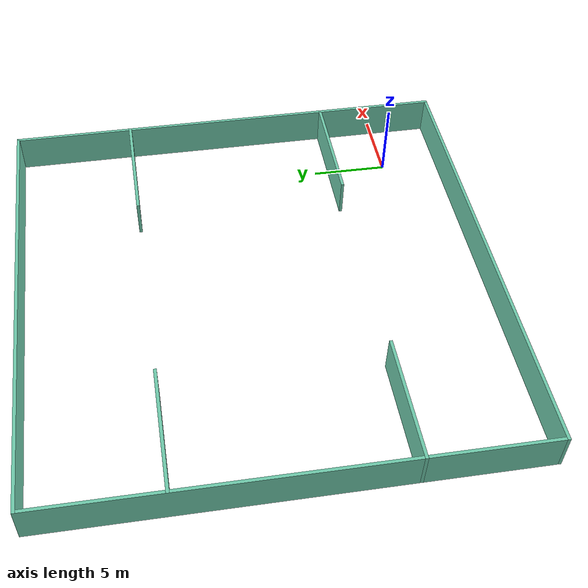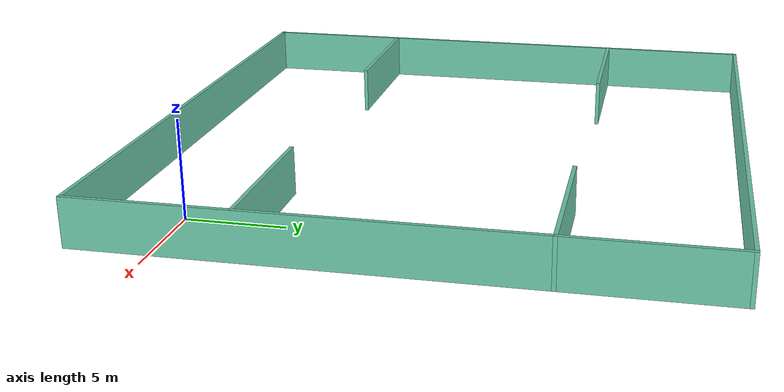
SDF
<?xml version='1.0'?>
<sdf version='1.7'>
  <model name='new_sim_world'>
    <pose>-11 11 0 0 -0 0</pose>
    <link name='Wall_10'>
      <collision name='Wall_10_Collision'>
        <geometry>
          <box>
            <size>8.2 0.2 2.5</size>
          </box>
        </geometry>
        <pose>0 0 1.25 0 -0 0</pose>
      </collision>
      <visual name='Wall_10_Visual'>
        <pose>0 0 1.25 0 -0 0</pose>
        <geometry>
          <box>
            <size>8.2 0.2 2.5</size>
          </box>
        </geometry>
        <material>
          <script>
            <uri>file://media/materials/scripts/gazebo.material</uri>
            <name>Gazebo/Grey</name>
          </script>
          <ambient>0.435294 0.796078 0.67451 1</ambient>
        </material>
        <meta>
          <layer>0</layer>
        </meta>
      </visual>
      <pose>-11 -7 0 0 -0 0</pose>
    </link>
    <link name='Wall_12'>
      <collision name='Wall_12_Collision'>
        <geometry>
          <box>
            <size>8.2 0.2 2.5</size>
          </box>
        </geometry>
        <pose>0 0 1.25 0 -0 0</pose>
      </collision>
      <visual name='Wall_12_Visual'>
        <pose>0 0 1.25 0 -0 0</pose>
        <geometry>
          <box>
            <size>8.2 0.2 2.5</size>
          </box>
        </geometry>
        <material>
          <script>
            <uri>file://media/materials/scripts/gazebo.material</uri>
            <name>Gazebo/Grey</name>
          </script>
          <ambient>0.435294 0.796078 0.67451 1</ambient>
        </material>
        <meta>
          <layer>0</layer>
        </meta>
      </visual>
      <pose>-11 7 0 0 -0 0</pose>
    </link>
    <link name='Wall_14'>
      <collision name='Wall_14_Collision'>
        <geometry>
          <box>
            <size>8.2 0.2 2.5</size>
          </box>
        </geometry>
        <pose>0 0 1.25 0 -0 0</pose>
      </collision>
      <visual name='Wall_14_Visual'>
        <pose>0 0 1.25 0 -0 0</pose>
        <geometry>
          <box>
            <size>8.2 0.2 2.5</size>
          </box>
        </geometry>
        <material>
          <script>
            <uri>file://media/materials/scripts/gazebo.material</uri>
            <name>Gazebo/Grey</name>
          </script>
          <ambient>0.435294 0.796078 0.67451 1</ambient>
        </material>
        <meta>
          <layer>0</layer>
        </meta>
      </visual>
      <pose>11 7 0 0 -0 3.14159</pose>
    </link>
    <link name='Wall_2'>
      <collision name='Wall_2_Collision'>
        <geometry>
          <box>
            <size>30.2 0.2 2.5</size>
          </box>
        </geometry>
        <pose>0 0 1.25 0 -0 0</pose>
      </collision>
      <visual name='Wall_2_Visual'>
        <pose>0 0 1.25 0 -0 0</pose>
        <geometry>
          <box>
            <size>30.2 0.2 2.5</size>
          </box>
        </geometry>
        <material>
          <script>
            <uri>file://media/materials/scripts/gazebo.material</uri>
            <name>Gazebo/Grey</name>
          </script>
          <ambient>0.435294 0.796078 0.67451 1</ambient>
        </material>
        <meta>
          <layer>0</layer>
        </meta>
      </visual>
      <pose>0 -15 0 0 -0 3.14159</pose>
    </link>
    <link name='Wall_3'>
      <collision name='Wall_3_Collision'>
        <geometry>
          <box>
            <size>30.2 0.2 2.5</size>
          </box>
        </geometry>
        <pose>0 0 1.25 0 -0 0</pose>
      </collision>
      <visual name='Wall_3_Visual'>
        <pose>0 0 1.25 0 -0 0</pose>
        <geometry>
          <box>
            <size>30.2 0.2 2.5</size>
          </box>
        </geometry>
        <material>
          <script>
            <uri>file://media/materials/scripts/gazebo.material</uri>
            <name>Gazebo/Grey</name>
          </script>
          <ambient>0.435294 0.796078 0.67451 1</ambient>
        </material>
        <meta>
          <layer>0</layer>
        </meta>
      </visual>
      <pose>-15 0 0 0 -0 1.5708</pose>
    </link>
    <link name='Wall_4'>
      <collision name='Wall_4_Collision'>
        <geometry>
          <box>
            <size>30.2 0.2 2.5</size>
          </box>
        </geometry>
        <pose>0 0 1.25 0 -0 0</pose>
      </collision>
      <visual name='Wall_4_Visual'>
        <pose>0 0 1.25 0 -0 0</pose>
        <geometry>
          <box>
            <size>30.2 0.2 2.5</size>
          </box>
        </geometry>
        <material>
          <script>
            <uri>file://media/materials/scripts/gazebo.material</uri>
            <name>Gazebo/Grey</name>
          </script>
          <ambient>0.435294 0.796078 0.67451 1</ambient>
        </material>
        <meta>
          <layer>0</layer>
        </meta>
      </visual>
      <pose>0 15 0 0 -0 0</pose>
    </link>
    <link name='Wall_6'>
      <collision name='Wall_6_Collision'>
        <geometry>
          <box>
            <size>30.2 0.2 2.5</size>
          </box>
        </geometry>
        <pose>0 0 1.25 0 -0 0</pose>
      </collision>
      <visual name='Wall_6_Visual'>
        <pose>0 0 1.25 0 -0 0</pose>
        <geometry>
          <box>
            <size>30.2 0.2 2.5</size>
          </box>
        </geometry>
        <material>
          <script>
            <uri>file://media/materials/scripts/gazebo.material</uri>
            <name>Gazebo/Grey</name>
          </script>
          <ambient>0.435294 0.796078 0.67451 1</ambient>
        </material>
        <meta>
          <layer>0</layer>
        </meta>
      </visual>
      <pose>15 0 0 0 -0 1.5708</pose>
    </link>
    <link name='Wall_8'>
      <collision name='Wall_8_Collision'>
        <geometry>
          <box>
            <size>8.2 0.2 2.5</size>
          </box>
        </geometry>
        <pose>0 0 1.25 0 -0 0</pose>
      </collision>
      <visual name='Wall_8_Visual'>
        <pose>0 0 1.25 0 -0 0</pose>
        <geometry>
          <box>
            <size>8.2 0.2 2.5</size>
          </box>
        </geometry>
        <material>
          <script>
            <uri>file://media/materials/scripts/gazebo.material</uri>
            <name>Gazebo/Grey</name>
          </script>
          <ambient>0.435294 0.796078 0.67451 1</ambient>
        </material>
        <meta>
          <layer>0</layer>
        </meta>
      </visual>
      <pose>11 -7 0 0 -0 3.14159</pose>
    </link>
    <static>1</static>
  </model>
</sdf>
